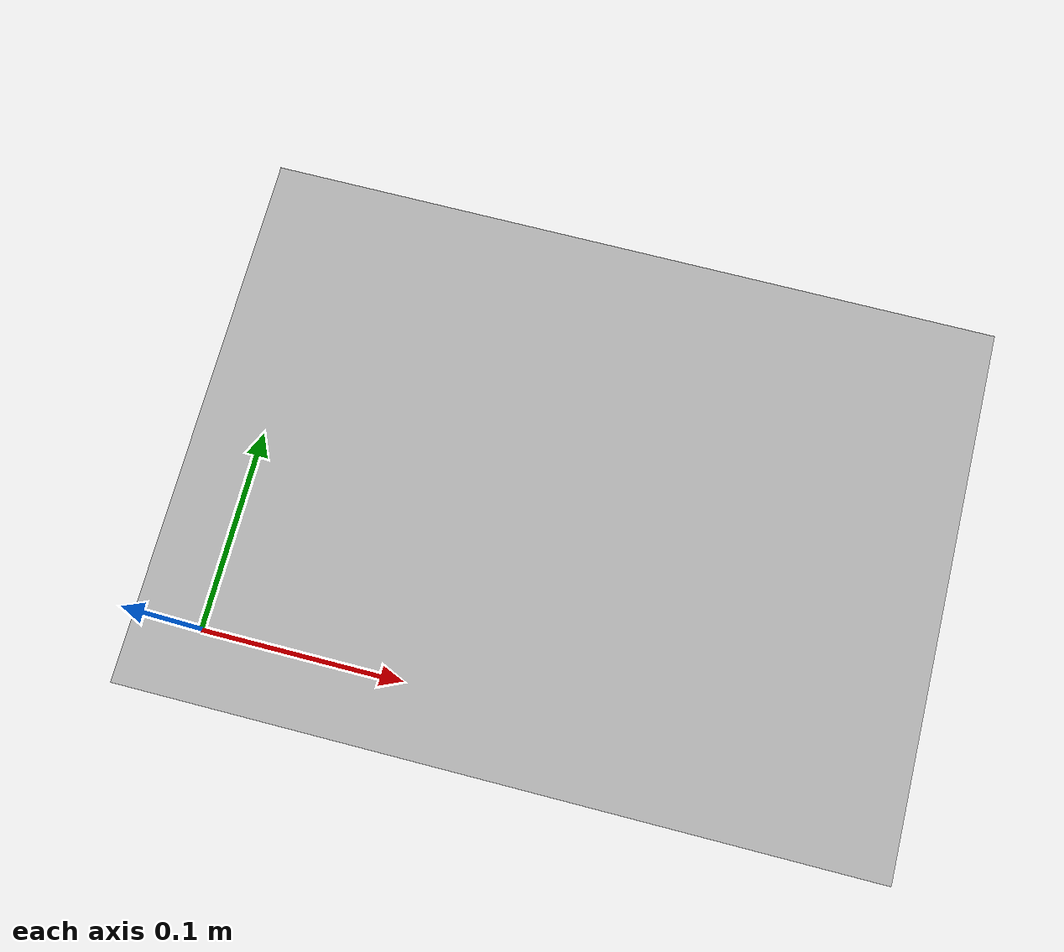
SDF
<?xml version="1.0" ?>
<sdf version="1.4">
  <model name="calibration_pattern">
    <static>true</static>
    <link name="link">
      <pose>0.153675 0.10245 0 0 0 0</pose>
      <visual name="visual">
        <cast_shadows>false</cast_shadows>
        <geometry>
          <box>
            <size>0.37565 0.2732 0.001</size>
          </box>
        </geometry>
        <material>
          <script>
            <uri>model://calibration_pattern/materials/scripts</uri>
            <uri>model://calibration_pattern/materials/textures</uri>
            <name>calibration_pattern</name>
          </script>
        </material>
      </visual>
    </link>
  </model>
</sdf>
